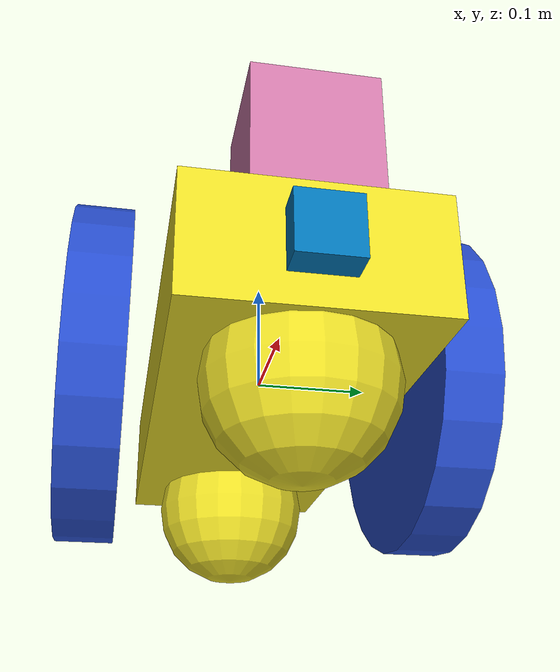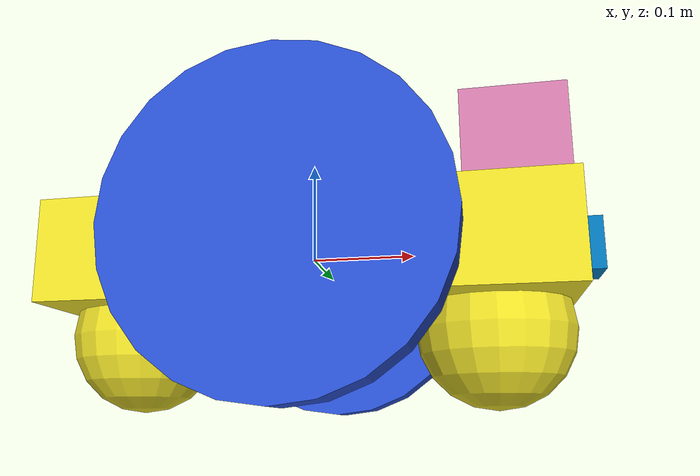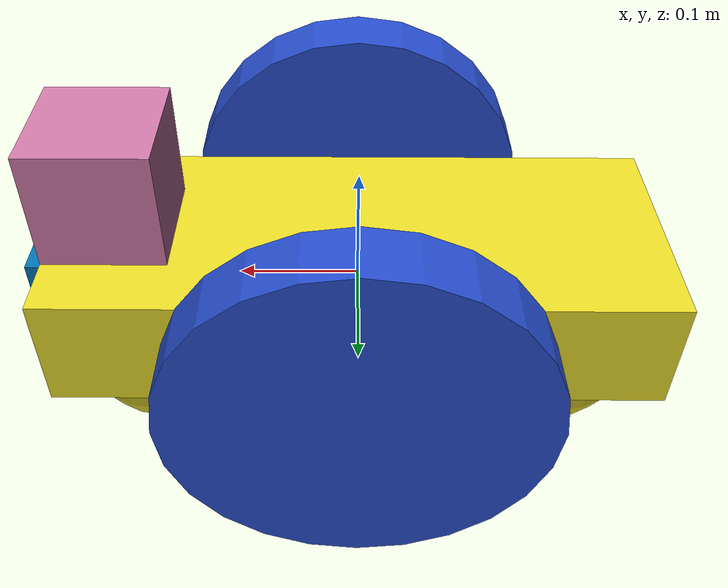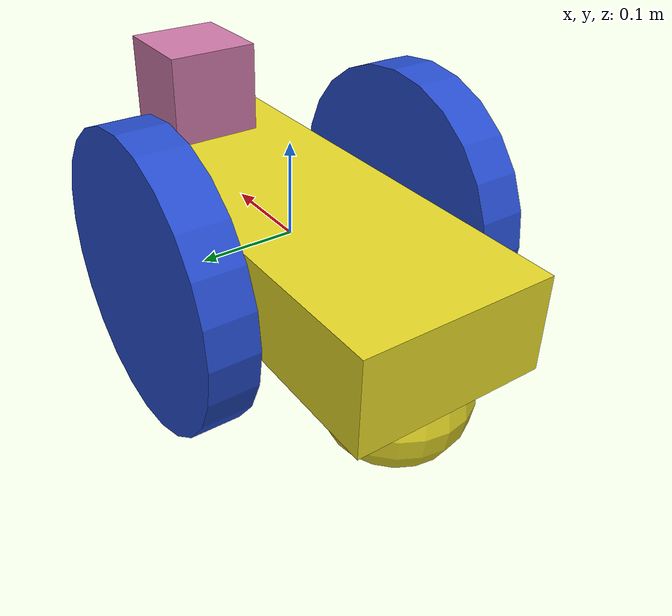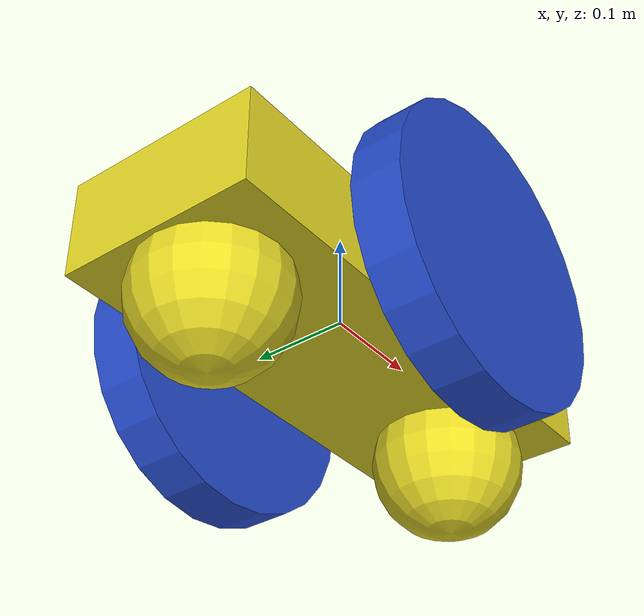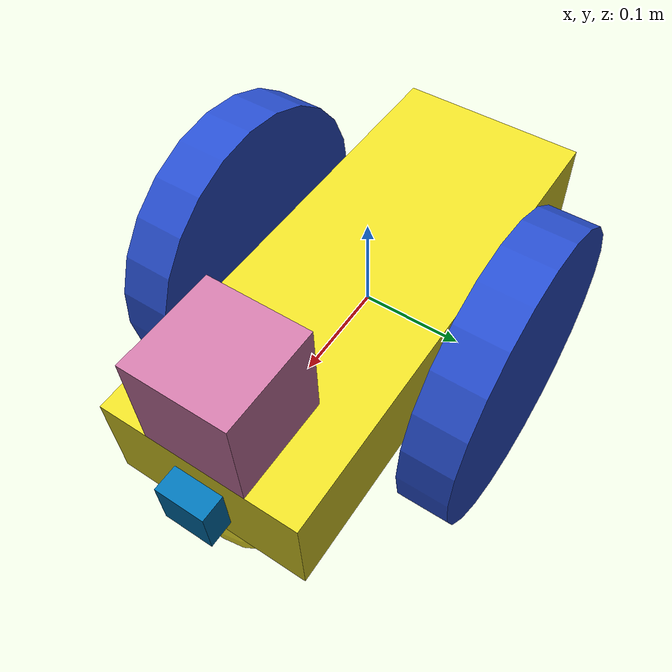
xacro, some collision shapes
<?xml version='1.0'?>

<robot name="my_robot" xmlns:xacro="http://www.ros.org/wiki/xacro">
  <xacro:include filename="$(find my_robot)/urdf/my_robot.gazebo" />

   <gazebo reference="chassis">
          <material>Gazebo/Yellow</material>
   </gazebo>

   <gazebo reference="left_wheel">
		<material>Gazebo/Blue</material>
   </gazebo>

   <gazebo reference="right_wheel">
		<material>Gazebo/Blue</material>
   </gazebo>

  <link name="robot_footprint"></link>

  <joint name="robot_footprint_joint" type="fixed">
    <origin xyz="0 0 0" rpy="0 0 0" />
    <parent link="robot_footprint"/>
    <child link="chassis" />
  </joint>

  <link name='chassis'>
    <pose>0 0 0.2 0 0 0</pose>

    <inertial>
      <mass value="15.0"/>
      <origin xyz="0.0 0 0" rpy=" 0 0 0"/>
      <inertia
          ixx="0.1" ixy="0" ixz="0"
          iyy="0.1" iyz="0"
          izz="0.1"
      />
    </inertial>

    <collision name='collision'>
      <origin xyz="0 0 0" rpy=" 0 0 0"/>
      <geometry>
        <box size=".5 .25 .1"/>
      </geometry>
    </collision>

    <visual name='chassis_visual'>
      <origin xyz="0 0 0" rpy=" 0 0 0"/>
      <geometry>
        <box size=".5 .2 .1"/>
      </geometry>
    </visual>

    <collision name='back_caster_collision'>
      <origin xyz="-0.175 0 -0.075" rpy=" 0 0 0"/>
      <geometry>
        <sphere radius="0.0749"/>
      </geometry>
    </collision>

    <visual name='back_caster_visual'>
      <origin xyz="-0.175 0 -0.075" rpy=" 0 0 0"/>
      <geometry>
        <sphere radius="0.075"/>
      </geometry>
    </visual>

    <collision name='front_caster_collision'>
      <origin xyz="0.175 0 -0.075" rpy=" 0 0 0"/>
      <geometry>
        <sphere radius="0.0749"/>
      </geometry>
    </collision>

    <visual name='front_caster_visual'>
      <origin xyz="0.175 0 -0.075" rpy=" 0 0 0"/>
      <geometry>
        <sphere radius="0.075"/>
      </geometry>
    </visual>

  </link>

  <link name='left_wheel'>
    <inertial>
      <mass value="5.0"/>
      <origin xyz="0.0 0 0" rpy=" 0 1.5707 1.5707"/>
      <inertia
          ixx="0.1" ixy="0" ixz="0"
          iyy="0.1" iyz="0"
          izz="0.1"
      />
    </inertial>

    <collision name='left_wheel_collision'>
      <origin xyz="0 0 0" rpy=" 0 1.5707 1.5707"/>
      <geometry>
        <cylinder radius="0.15" length="0.05"/>
      </geometry>
    </collision>

    <visual name='left_wheel_visual'>
      <origin xyz="0 0 0" rpy=" 0 1.5707 1.5707"/>
      <geometry>
        <cylinder radius="0.15" length="0.05"/>
      </geometry>
    </visual>
  </link>

  <link name='right_wheel'>
    <inertial>
      <mass value="5.0"/>
      <origin xyz="0.0 0 0" rpy=" 0 1.5707 1.5707"/>
      <inertia
          ixx="0.1" ixy="0" ixz="0"
          iyy="0.1" iyz="0"
          izz="0.1"
      />
    </inertial>

    <collision name='right_wheel_collision'>
      <origin xyz="0 0 0" rpy=" 0 1.5707 1.5707"/>
      <geometry>
        <cylinder radius="0.15" length="0.05"/>
      </geometry>
    </collision>

    <visual name='right_wheel_visual'>
      <origin xyz="0 0 0" rpy=" 0 1.5707 1.5707"/>
      <geometry>
        <cylinder radius="0.15" length="0.05"/>
      </geometry>
    </visual>
  </link>

  <joint name="left_wheel_hinge" type="continuous">
    <origin xyz="0 0.15 0" rpy="0 0 0"/>
    <child link="left_wheel"/>
    <parent link="chassis"/>
    <axis xyz="0 1 0" rpy="0 0 0"/>
    <limit effort="10000" velocity="1000"/>
    <dynamics damping="1.0" friction="1.0"/>
  </joint>

  <joint name="right_wheel_hinge" type="continuous">
    <origin xyz="0 -0.15 0" rpy="0 0 0"/>
    <child link="right_wheel"/>
    <parent link="chassis"/>
    <axis xyz="0 1 0" rpy="0 0 0"/>
    <limit effort="10000" velocity="1000"/>
    <dynamics damping="1.0" friction="1.0"/>
  </joint>

  <link name='camera'>
    <inertial>
      <mass value="0.1"/>
      <origin xyz="0.0 0 0" rpy=" 0 0 0"/>
      <inertia
          ixx="0.05" ixy="0.05" ixz="0.05"
          iyy="1e-6" iyz="1e-6"
          izz="1e-6"
      />
    </inertial>

    <collision name='camera_collision'>
      <origin xyz="0 0 0" rpy=" 0 0 0"/>
      <geometry>
        <box size=" 0.05 0.05 0.05"/>
      </geometry>
    </collision>

    <visual name='camera_visual'>
      <origin xyz="0 0 0" rpy=" 0 0 0"/>
      <geometry>
        <box size=" 0.05 0.05 0.05"/>
      </geometry>
    </visual>
  </link>

<joint type="fixed" name="camera_joint">
    <origin xyz="0.25 0 0" rpy="0 0 0"/>
    <child link="camera"/>
    <parent link="chassis"/>
    <axis xyz="0 1 0" rpy="0 0 0"/>

  </joint>

  <joint name="camera_optical_joint" type="fixed">
    <origin xyz="0 0 0" rpy="-1.5707 0 -1.5707"/>
    <parent link="camera"/>
    <child link="camera_link_optical"/>
  </joint>

  <link name="camera_link_optical">
  </link>

  <link name='hokuyo'>
    <inertial>
      <mass value="1e-5"/>
      <origin xyz="0.0 0 0" rpy=" 0 0 0"/>
      <inertia
          ixx="1e-6" ixy="0" ixz="0"
          iyy="1e-6" iyz="0"
          izz="1e-6"
      />
    </inertial>

    <collision name='hokuyo_collision'>
      <origin xyz="0 0 0" rpy=" 0 0 0"/>
      <geometry>
        <box size=" 0.1 0.1 0.1"/>
      </geometry>
    </collision>

    <visual name='hokuyo_visual'>
      <origin xyz="0 0 0" rpy=" 0 0 0"/>
      <geometry>
          <mesh filename = "package://my_robot/meshes/hokuyo.dae"/>
      </geometry>
    </visual>
  </link>

  <joint name="hokuyo_joint" type="fixed">
    <origin xyz="0.2 0 0.1" rpy="0 0 0"/>
    <child link="hokuyo"/>
    <parent link="chassis"/>
    <axis xyz="0 1 0" rpy="0 0 0"/>
    <limit effort="10000" velocity="1000"/>
    <dynamics damping="1.0" friction="1.0"/>
  </joint>

</robot>
